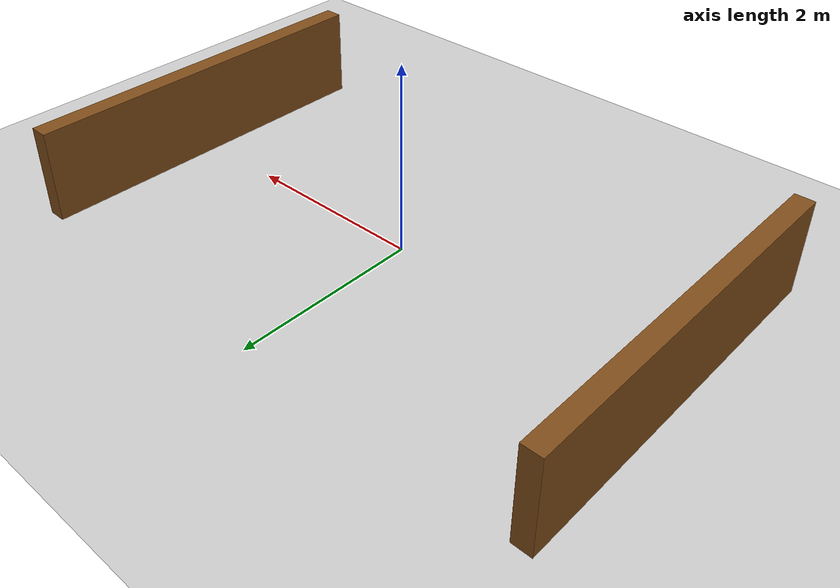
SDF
<?xml version="1.0" ?>
<sdf version="1.9">
  <world name="mar_world">
    <physics name="1ms" type="ignored">
      <max_step_size>0.001</max_step_size>
      <real_time_factor>1.0</real_time_factor>
    </physics>
    <plugin filename="gz-sim-physics-system" name="gz::sim::systems::Physics"/>
    <plugin filename="gz-sim-user-commands-system" name="gz::sim::systems::UserCommands"/>
    <plugin filename="gz-sim-scene-broadcaster-system" name="gz::sim::systems::SceneBroadcaster"/>
    <plugin filename="gz-sim-sensors-system" name="gz::sim::systems::Sensors">
      <render_engine>ogre2</render_engine>
    </plugin>
    <light type="directional" name="sun">
      <cast_shadows>true</cast_shadows>
      <pose>0 0 10 0 0 0</pose>
      <diffuse>0.8 0.8 0.8 1</diffuse>
      <specular>0.2 0.2 0.2 1</specular>
      <direction>-0.5 0.1 -0.9</direction>
    </light>
    <model name="ground_plane">
      <static>true</static>
      <link name="link">
        <collision name="collision">
          <geometry><plane><normal>0 0 1</normal><size>100 100</size></plane></geometry>
        </collision>
        <visual name="visual">
          <geometry><plane><normal>0 0 1</normal><size>100 100</size></plane></geometry>
          <material><ambient>0.8 0.8 0.8 1</ambient><diffuse>0.8 0.8 0.8 1</diffuse></material>
        </visual>
      </link>
    </model>
    <model name="wall_1">
      <static>true</static>
      <pose>3 0 0.5 0 0 0</pose>
      <link name="link">
        <collision name="collision"><geometry><box><size>0.2 4 1</size></box></geometry></collision>
        <visual name="visual">
          <geometry><box><size>0.2 4 1</size></box></geometry>
          <material><ambient>0.5 0.3 0.1 1</ambient><diffuse>0.5 0.3 0.1 1</diffuse></material>
        </visual>
      </link>
    </model>
    <model name="wall_2">
      <static>true</static>
      <pose>-3 0 0.5 0 0 0</pose>
      <link name="link">
        <collision name="collision"><geometry><box><size>0.2 4 1</size></box></geometry></collision>
        <visual name="visual">
          <geometry><box><size>0.2 4 1</size></box></geometry>
          <material><ambient>0.5 0.3 0.1 1</ambient><diffuse>0.5 0.3 0.1 1</diffuse></material>
        </visual>
      </link>
    </model>
  </world>
</sdf>
